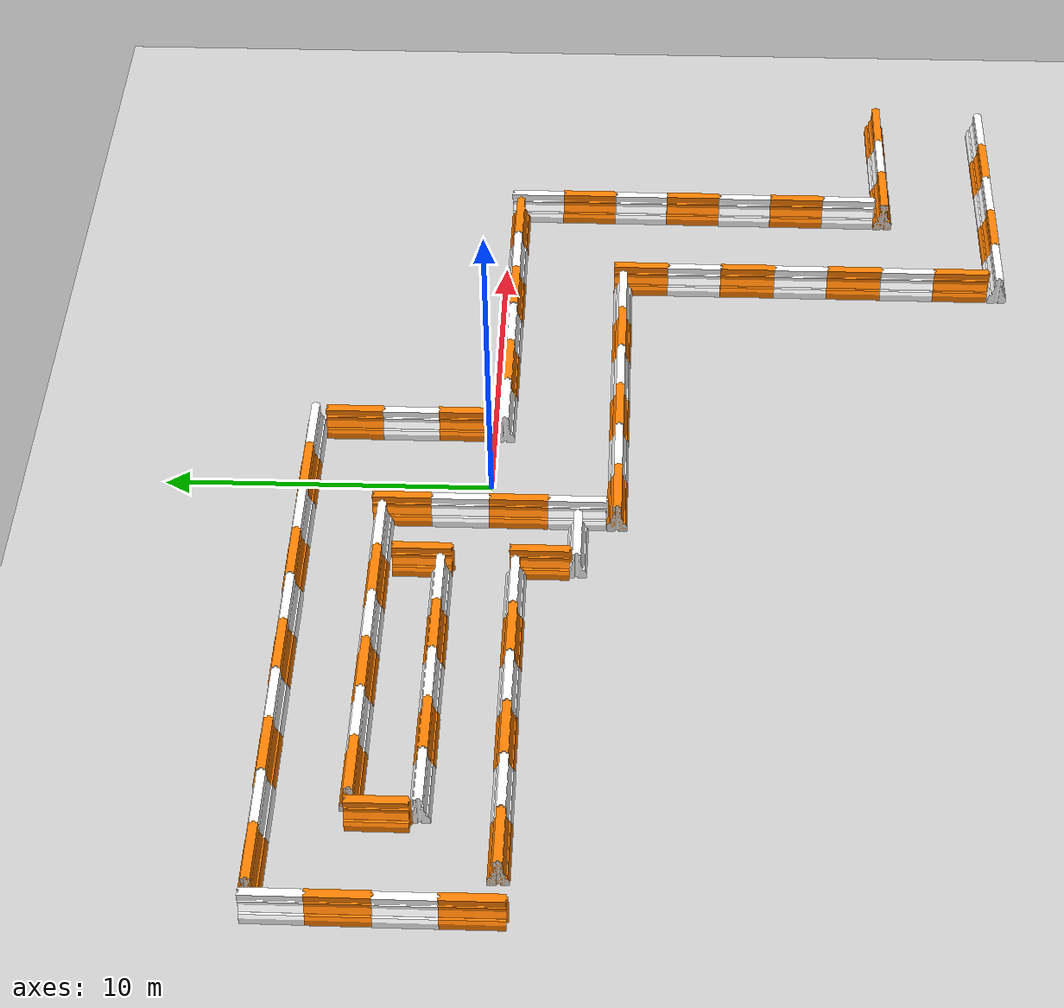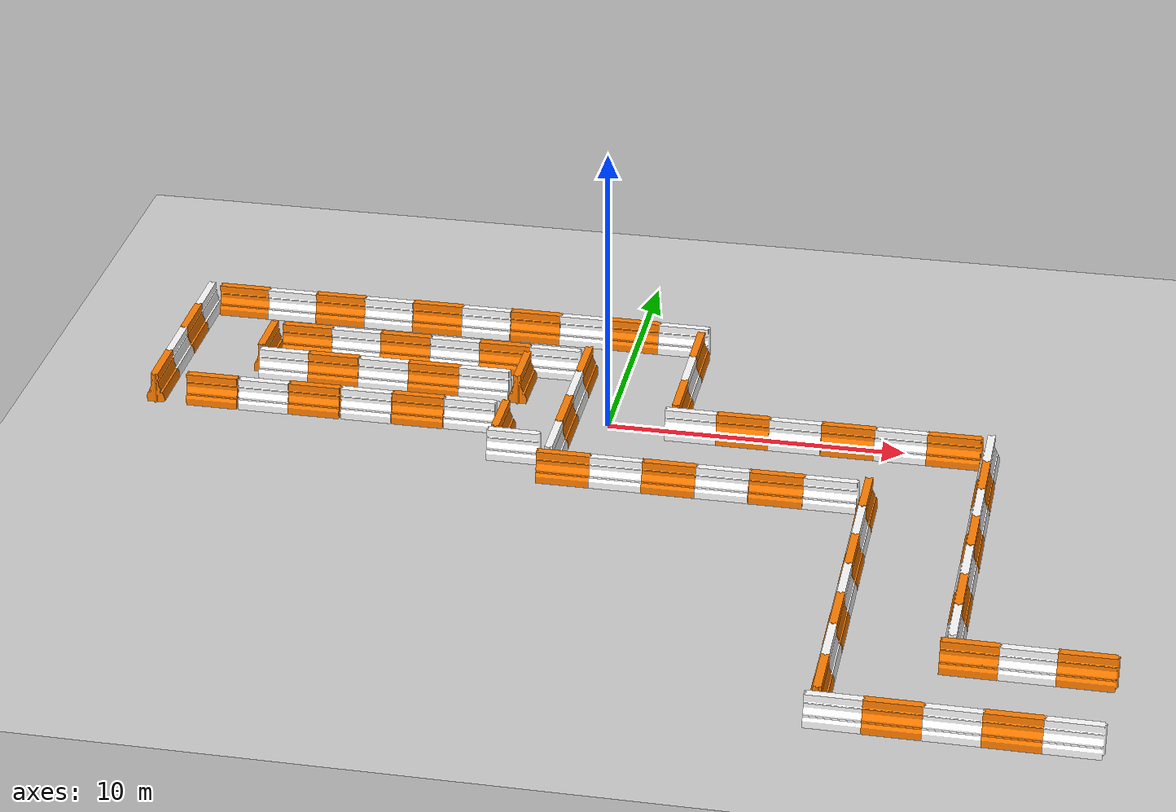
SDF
<sdf version="1.7">
 <world name="default">
  <light name="sun" type="directional">
   <pose>0 0 10 0 -0 0</pose>
   <diffuse>0.8 0.8 0.8 1</diffuse>
   <specular>0.2 0.2 0.2 1</specular>
   <attenuation>
    <range>1000</range>
    <constant>0.9</constant>
    <linear>0.01</linear>
    <quadratic>0.001</quadratic>
   </attenuation>
   <direction>-0.5 0.1 -0.9</direction>
   <spot><inner_angle>0</inner_angle><outer_angle>0</outer_angle><falloff>0</falloff></spot>
  </light>
  <model name="ground_plane">
   <static>1</static>
   <link name="link">
    <collision name="collision">
     <geometry><plane><normal>0 0 1</normal><size>100 100</size></plane></geometry>
     <surface><friction><ode><mu>100</mu><mu2>50</mu2></ode></friction></surface>
    </collision>
    <visual name="visual">
     <cast_shadows>0</cast_shadows>
     <geometry><plane><normal>0 0 1</normal><size>100 100</size></plane></geometry>
     <material>
      <script><uri>file://media/materials/scripts/gazebo.material</uri><name>Gazebo/Grey</name></script>
     </material>
    </visual>
   </link>
  </model>
  <gravity>0 0 -9.8</gravity>
  <magnetic_field>6e-06 2.3e-05 -4.2e-05</magnetic_field>
  <atmosphere type="adiabatic"/>
  <physics type="ode">
   <max_step_size>0.001</max_step_size>
   <real_time_factor>1</real_time_factor>
   <real_time_update_rate>1000</real_time_update_rate>
  </physics>
  <scene><ambient>0.4 0.4 0.4 1</ambient><background>0.7 0.7 0.7 1</background><shadows>0</shadows></scene>
  <audio><device>default</device></audio>
  <spherical_coordinates>
   <surface_model>EARTH_WGS84</surface_model>
   <latitude_deg>0</latitude_deg>
   <longitude_deg>0</longitude_deg>
   <elevation>0</elevation>
   <heading_deg>0</heading_deg>
  </spherical_coordinates>
  <model name="drc_practice_organge_jersey_barrier_0_clone_0">
   <static>1</static>
   <link name="link">
    <visual name="visual">
     <geometry>
      <mesh><uri>model://drc_practice_orange_jersey_barrier/meshes/jersey_barrier.dae</uri></mesh>
     </geometry>
    </visual>
    <collision name="collision">
     <geometry>
      <mesh><uri>model://drc_practice_orange_jersey_barrier/meshes/jersey_barrier.dae</uri></mesh>
     </geometry>
    </collision>
   </link>
   <pose>-3.31318 1.87553 0 0 -0 0</pose>
  </model>
  <model name="drc_practice_white_jersey_barrier_clone_clone_0">
   <static>1</static>
   <link name="link">
    <visual name="visual">
     <geometry>
      <mesh><uri>model://drc_practice_white_jersey_barrier/meshes/jersey_barrier.dae</uri></mesh>
     </geometry>
    </visual>
    <collision name="collision">
     <geometry>
      <mesh><uri>model://drc_practice_white_jersey_barrier/meshes/jersey_barrier.dae</uri></mesh>
     </geometry>
    </collision>
   </link>
   <pose>-2.67869 -2.67276 0 0 -0 1.5707</pose>
  </model>
  <model name="drc_practice_organge_jersey_barrier_0_clone_clone">
   <static>1</static>
   <link name="link">
    <visual name="visual">
     <geometry>
      <mesh><uri>model://drc_practice_orange_jersey_barrier/meshes/jersey_barrier.dae</uri></mesh>
     </geometry>
    </visual>
    <collision name="collision">
     <geometry>
      <mesh><uri>model://drc_practice_orange_jersey_barrier/meshes/jersey_barrier.dae</uri></mesh>
     </geometry>
    </collision>
   </link>
   <pose>2.31138 0.862878 0 0 -0 0</pose>
  </model>
  <model name="drc_practice_white_jersey_barrier_clone_0_clone">
   <static>1</static>
   <link name="link">
    <visual name="visual">
     <geometry>
      <mesh><uri>model://drc_practice_white_jersey_barrier/meshes/jersey_barrier.dae</uri></mesh>
     </geometry>
    </visual>
    <collision name="collision">
     <geometry>
      <mesh><uri>model://drc_practice_white_jersey_barrier/meshes/jersey_barrier.dae</uri></mesh>
     </geometry>
    </collision>
   </link>
   <pose>2.30247 2.60242 0 0 -0 0</pose>
  </model>
  <model name="drc_practice_white_jersey_barrier_clone_clone_clone">
   <static>1</static>
   <link name="link">
    <visual name="visual">
     <geometry>
      <mesh><uri>model://drc_practice_white_jersey_barrier/meshes/jersey_barrier.dae</uri></mesh>
     </geometry>
    </visual>
    <collision name="collision">
     <geometry>
      <mesh><uri>model://drc_practice_white_jersey_barrier/meshes/jersey_barrier.dae</uri></mesh>
     </geometry>
    </collision>
   </link>
   <pose>2.86919 -0.302325 0 0 -0 1.5707</pose>
  </model>
  <model name="drc_practice_organge_jersey_barrier_1_clone_clone_0_clone_clone">
   <static>1</static>
   <link name="link">
    <visual name="visual">
     <geometry>
      <mesh><uri>model://drc_practice_orange_jersey_barrier/meshes/jersey_barrier.dae</uri></mesh>
     </geometry>
    </visual>
    <collision name="collision">
     <geometry>
      <mesh><uri>model://drc_practice_orange_jersey_barrier/meshes/jersey_barrier.dae</uri></mesh>
     </geometry>
    </collision>
   </link>
   <pose>4.62176 -0.320996 0 0 -0 1.5707</pose>
  </model>
  <model name="drc_practice_organge_jersey_barrier_0_clone_0_clone_clone">
   <static>1</static>
   <link name="link">
    <visual name="visual">
     <geometry>
      <mesh><uri>model://drc_practice_orange_jersey_barrier/meshes/jersey_barrier.dae</uri></mesh>
     </geometry>
    </visual>
    <collision name="collision">
     <geometry>
      <mesh><uri>model://drc_practice_orange_jersey_barrier/meshes/jersey_barrier.dae</uri></mesh>
     </geometry>
    </collision>
   </link>
   <pose>-1.31687 -0.878506 0 0 -0 0</pose>
  </model>
  <model name="drc_practice_white_jersey_barrier_clone_1_clone">
   <static>1</static>
   <link name="link">
    <visual name="visual">
     <geometry>
      <mesh><uri>model://drc_practice_white_jersey_barrier/meshes/jersey_barrier.dae</uri></mesh>
     </geometry>
    </visual>
    <collision name="collision">
     <geometry>
      <mesh><uri>model://drc_practice_white_jersey_barrier/meshes/jersey_barrier.dae</uri></mesh>
     </geometry>
    </collision>
   </link>
   <pose>-1.31231 0.867307 0 0 -0 0</pose>
  </model>
  <model name="drc_practice_organge_jersey_barrier_0_clone_0_clone">
   <static>1</static>
   <link name="link">
    <visual name="visual">
     <geometry>
      <mesh><uri>model://drc_practice_orange_jersey_barrier/meshes/jersey_barrier.dae</uri></mesh>
     </geometry>
    </visual>
    <collision name="collision">
     <geometry>
      <mesh><uri>model://drc_practice_orange_jersey_barrier/meshes/jersey_barrier.dae</uri></mesh>
     </geometry>
    </collision>
   </link>
   <pose>-3.33024 -1.58529 0 0 -0 0</pose>
  </model>
  <model name="drc_practice_organge_jersey_barrier_0_clone_0_clone_0">
   <static>1</static>
   <link name="link">
    <visual name="visual">
     <geometry>
      <mesh><uri>model://drc_practice_orange_jersey_barrier/meshes/jersey_barrier.dae</uri></mesh>
     </geometry>
    </visual>
    <collision name="collision">
     <geometry>
      <mesh><uri>model://drc_practice_orange_jersey_barrier/meshes/jersey_barrier.dae</uri></mesh>
     </geometry>
    </collision>
   </link>
   <pose>-1.3008 2.61343 0 0 -0 0</pose>
  </model>
  <model name="drc_practice_white_jersey_barrier_clone_1_clone_clone">
   <static>1</static>
   <link name="link">
    <visual name="visual">
     <geometry>
      <mesh><uri>model://drc_practice_white_jersey_barrier/meshes/jersey_barrier.dae</uri></mesh>
     </geometry>
    </visual>
    <collision name="collision">
     <geometry>
      <mesh><uri>model://drc_practice_white_jersey_barrier/meshes/jersey_barrier.dae</uri></mesh>
     </geometry>
    </collision>
   </link>
   <pose>-1.32394 -2.62974 0 0 -0 0</pose>
  </model>
  <model name="drc_practice_organge_jersey_barrier_1_clone_clone_clone_clone">
   <static>1</static>
   <link name="link">
    <visual name="visual">
     <geometry>
      <mesh><uri>model://drc_practice_orange_jersey_barrier/meshes/jersey_barrier.dae</uri></mesh>
     </geometry>
    </visual>
    <collision name="collision">
     <geometry>
      <mesh><uri>model://drc_practice_orange_jersey_barrier/meshes/jersey_barrier.dae</uri></mesh>
     </geometry>
    </collision>
   </link>
   <pose>-0.767726 -3.83305 0 0 -0 1.5707</pose>
  </model>
  <model name="drc_practice_white_jersey_barrier_clone_clone_1">
   <static>1</static>
   <link name="link">
    <visual name="visual">
     <geometry>
      <mesh><uri>model://drc_practice_white_jersey_barrier/meshes/jersey_barrier.dae</uri></mesh>
     </geometry>
    </visual>
    <collision name="collision">
     <geometry>
      <mesh><uri>model://drc_practice_white_jersey_barrier/meshes/jersey_barrier.dae</uri></mesh>
     </geometry>
    </collision>
   </link>
   <pose>0.983586 -3.83584 0 0 -0 1.5707</pose>
  </model>
  <model name="drc_practice_organge_jersey_barrier_1_clone_clone_clone">
   <static>1</static>
   <link name="link">
    <visual name="visual">
     <geometry>
      <mesh><uri>model://drc_practice_orange_jersey_barrier/meshes/jersey_barrier.dae</uri></mesh>
     </geometry>
    </visual>
    <collision name="collision">
     <geometry>
      <mesh><uri>model://drc_practice_orange_jersey_barrier/meshes/jersey_barrier.dae</uri></mesh>
     </geometry>
    </collision>
   </link>
   <pose>2.73509 -3.84784 0 0 -0 1.5707</pose>
  </model>
  <model name="drc_practice_white_jersey_barrier_clone_clone_1_clone">
   <static>1</static>
   <link name="link">
    <visual name="visual">
     <geometry>
      <mesh><uri>model://drc_practice_white_jersey_barrier/meshes/jersey_barrier.dae</uri></mesh>
     </geometry>
    </visual>
    <collision name="collision">
     <geometry>
      <mesh><uri>model://drc_practice_white_jersey_barrier/meshes/jersey_barrier.dae</uri></mesh>
     </geometry>
    </collision>
   </link>
   <pose>4.48621 -3.852 0 0 -0 1.5707</pose>
  </model>
  <model name="drc_practice_organge_jersey_barrier_0_clone_0_clone_1">
   <static>1</static>
   <link name="link">
    <visual name="visual">
     <geometry>
      <mesh><uri>model://drc_practice_orange_jersey_barrier/meshes/jersey_barrier.dae</uri></mesh>
     </geometry>
    </visual>
    <collision name="collision">
     <geometry>
      <mesh><uri>model://drc_practice_orange_jersey_barrier/meshes/jersey_barrier.dae</uri></mesh>
     </geometry>
    </collision>
   </link>
   <pose>2.31139 4.35051 0 0 -0 0</pose>
  </model>
  <model name="drc_practice_white_jersey_barrier_clone_clone_0_clone">
   <static>1</static>
   <link name="link">
    <visual name="visual">
     <geometry>
      <mesh><uri>model://drc_practice_white_jersey_barrier/meshes/jersey_barrier.dae</uri></mesh>
     </geometry>
    </visual>
    <collision name="collision">
     <geometry>
      <mesh><uri>model://drc_practice_white_jersey_barrier/meshes/jersey_barrier.dae</uri></mesh>
     </geometry>
    </collision>
   </link>
   <pose>1.64216 5.58178 0 0 -0 1.5707</pose>
  </model>
  <model name="drc_practice_organge_jersey_barrier_1_clone_clone_clone_0">
   <static>1</static>
   <link name="link">
    <visual name="visual">
     <geometry>
      <mesh><uri>model://drc_practice_orange_jersey_barrier/meshes/jersey_barrier.dae</uri></mesh>
     </geometry>
    </visual>
    <collision name="collision">
     <geometry>
      <mesh><uri>model://drc_practice_orange_jersey_barrier/meshes/jersey_barrier.dae</uri></mesh>
     </geometry>
    </collision>
   </link>
   <pose>-0.107583 5.59495 0 0 -0 1.5707</pose>
  </model>
  <model name="drc_practice_white_jersey_barrier_clone_clone_0_clone_clone">
   <static>1</static>
   <link name="link">
    <visual name="visual">
     <geometry>
      <mesh><uri>model://drc_practice_white_jersey_barrier/meshes/jersey_barrier.dae</uri></mesh>
     </geometry>
    </visual>
    <collision name="collision">
     <geometry>
      <mesh><uri>model://drc_practice_white_jersey_barrier/meshes/jersey_barrier.dae</uri></mesh>
     </geometry>
    </collision>
   </link>
   <pose>-1.85597 5.61076 0 0 -0 1.5707</pose>
  </model>
  <model name="drc_practice_white_jersey_barrier_clone_clone_0_clone_clone_0">
   <static>1</static>
   <link name="link">
    <visual name="visual">
     <geometry>
      <mesh><uri>model://drc_practice_white_jersey_barrier/meshes/jersey_barrier.dae</uri></mesh>
     </geometry>
    </visual>
    <collision name="collision">
     <geometry>
      <mesh><uri>model://drc_practice_white_jersey_barrier/meshes/jersey_barrier.dae</uri></mesh>
     </geometry>
    </collision>
   </link>
   <pose>-2.44523 3.18144 0 0 -0 1.5707</pose>
  </model>
  <model name="drc_practice_organge_jersey_barrier_1_clone_clone_clone_0_clone">
   <static>1</static>
   <link name="link">
    <visual name="visual">
     <geometry>
      <mesh><uri>model://drc_practice_orange_jersey_barrier/meshes/jersey_barrier.dae</uri></mesh>
     </geometry>
    </visual>
    <collision name="collision">
     <geometry>
      <mesh><uri>model://drc_practice_orange_jersey_barrier/meshes/jersey_barrier.dae</uri></mesh>
     </geometry>
    </collision>
   </link>
   <pose>-4.196 3.18198 0 0 -0 1.5707</pose>
  </model>
  <model name="drc_practice_organge_jersey_barrier_1_clone_clone_clone_0_clone_0">
   <static>1</static>
   <link name="link">
    <visual name="visual">
     <geometry>
      <mesh><uri>model://drc_practice_orange_jersey_barrier/meshes/jersey_barrier.dae</uri></mesh>
     </geometry>
    </visual>
    <collision name="collision">
     <geometry>
      <mesh><uri>model://drc_practice_orange_jersey_barrier/meshes/jersey_barrier.dae</uri></mesh>
     </geometry>
    </collision>
   </link>
   <pose>-3.60749 5.61576 0 0 -0 1.5707</pose>
  </model>
  <model name="drc_practice_white_jersey_barrier_clone_clone_0_clone_clone_0_clone">
   <static>1</static>
   <link name="link">
    <visual name="visual">
     <geometry>
      <mesh><uri>model://drc_practice_white_jersey_barrier/meshes/jersey_barrier.dae</uri></mesh>
     </geometry>
    </visual>
    <collision name="collision">
     <geometry>
      <mesh><uri>model://drc_practice_white_jersey_barrier/meshes/jersey_barrier.dae</uri></mesh>
     </geometry>
    </collision>
   </link>
   <pose>6.37823 -0.335627 0 0 -0 1.5707</pose>
  </model>
  <model name="drc_practice_white_jersey_barrier_clone_clone_0_clone_clone_0_clone_0">
   <static>1</static>
   <link name="link">
    <visual name="visual">
     <geometry>
      <mesh><uri>model://drc_practice_white_jersey_barrier/meshes/jersey_barrier.dae</uri></mesh>
     </geometry>
    </visual>
    <collision name="collision">
     <geometry>
      <mesh><uri>model://drc_practice_white_jersey_barrier/meshes/jersey_barrier.dae</uri></mesh>
     </geometry>
    </collision>
   </link>
   <pose>-5.36513 5.60492 0 0 -0 1.5707</pose>
  </model>
  <model name="drc_practice_white_jersey_barrier_clone_clone_0_clone_clone_0_clone_1">
   <static>1</static>
   <link name="link">
    <visual name="visual">
     <geometry>
      <mesh><uri>model://drc_practice_white_jersey_barrier/meshes/jersey_barrier.dae</uri></mesh>
     </geometry>
    </visual>
    <collision name="collision">
     <geometry>
      <mesh><uri>model://drc_practice_white_jersey_barrier/meshes/jersey_barrier.dae</uri></mesh>
     </geometry>
    </collision>
   </link>
   <pose>-5.94465 3.19273 0 0 -0 1.5707</pose>
  </model>
  <model name="drc_practice_organge_jersey_barrier_1_clone_clone_clone_clone_clone">
   <static>1</static>
   <link name="link">
    <visual name="visual">
     <geometry>
      <mesh><uri>model://drc_practice_orange_jersey_barrier/meshes/jersey_barrier.dae</uri></mesh>
     </geometry>
    </visual>
    <collision name="collision">
     <geometry>
      <mesh><uri>model://drc_practice_orange_jersey_barrier/meshes/jersey_barrier.dae</uri></mesh>
     </geometry>
    </collision>
   </link>
   <pose>6.25905 -3.86914 0 0 -0 1.5707</pose>
  </model>
  <model name="drc_practice_organge_jersey_barrier_1_clone_clone_clone_clone_clone_0">
   <static>1</static>
   <link name="link">
    <visual name="visual">
     <geometry>
      <mesh><uri>model://drc_practice_orange_jersey_barrier/meshes/jersey_barrier.dae</uri></mesh>
     </geometry>
    </visual>
    <collision name="collision">
     <geometry>
      <mesh><uri>model://drc_practice_orange_jersey_barrier/meshes/jersey_barrier.dae</uri></mesh>
     </geometry>
    </collision>
   </link>
   <pose>8.14006 -0.351847 0 0 -0 1.5707</pose>
  </model>
  <model name="drc_practice_organge_jersey_barrier_1_clone_clone_clone_clone_clone_1">
   <static>1</static>
   <link name="link">
    <visual name="visual">
     <geometry>
      <mesh><uri>model://drc_practice_orange_jersey_barrier/meshes/jersey_barrier.dae</uri></mesh>
     </geometry>
    </visual>
    <collision name="collision">
     <geometry>
      <mesh><uri>model://drc_practice_orange_jersey_barrier/meshes/jersey_barrier.dae</uri></mesh>
     </geometry>
    </collision>
   </link>
   <pose>-7.12081 5.61938 0 0 -0 1.5707</pose>
  </model>
  <model name="drc_practice_organge_jersey_barrier_1_clone_clone_clone_clone_clone_2">
   <static>1</static>
   <link name="link">
    <visual name="visual">
     <geometry>
      <mesh><uri>model://drc_practice_orange_jersey_barrier/meshes/jersey_barrier.dae</uri></mesh>
     </geometry>
    </visual>
    <collision name="collision">
     <geometry>
      <mesh><uri>model://drc_practice_orange_jersey_barrier/meshes/jersey_barrier.dae</uri></mesh>
     </geometry>
    </collision>
   </link>
   <pose>-7.6982 3.19881 0 0 -0 1.5707</pose>
  </model>
  <model name="drc_practice_white_jersey_barrier_clone_clone_1_clone_clone">
   <static>1</static>
   <link name="link">
    <visual name="visual">
     <geometry>
      <mesh><uri>model://drc_practice_white_jersey_barrier/meshes/jersey_barrier.dae</uri></mesh>
     </geometry>
    </visual>
    <collision name="collision">
     <geometry>
      <mesh><uri>model://drc_practice_white_jersey_barrier/meshes/jersey_barrier.dae</uri></mesh>
     </geometry>
    </collision>
   </link>
   <pose>-8.88335 5.62037 0 0 -0 1.5707</pose>
  </model>
  <model name="drc_practice_white_jersey_barrier_clone_clone_1_clone_clone_0">
   <static>1</static>
   <link name="link">
    <visual name="visual">
     <geometry>
      <mesh><uri>model://drc_practice_white_jersey_barrier/meshes/jersey_barrier.dae</uri></mesh>
     </geometry>
    </visual>
    <collision name="collision">
     <geometry>
      <mesh><uri>model://drc_practice_white_jersey_barrier/meshes/jersey_barrier.dae</uri></mesh>
     </geometry>
    </collision>
   </link>
   <pose>-9.44659 3.20838 0 0 -0 1.5707</pose>
  </model>
  <model name="drc_practice_white_jersey_barrier_clone_clone_1_clone_clone_1">
   <static>1</static>
   <link name="link">
    <visual name="visual">
     <geometry>
      <mesh><uri>model://drc_practice_white_jersey_barrier/meshes/jersey_barrier.dae</uri></mesh>
     </geometry>
    </visual>
    <collision name="collision">
     <geometry>
      <mesh><uri>model://drc_practice_white_jersey_barrier/meshes/jersey_barrier.dae</uri></mesh>
     </geometry>
    </collision>
   </link>
   <pose>9.89396 -0.347285 0 0 -0 1.5707</pose>
  </model>
  <model name="drc_practice_white_jersey_barrier_clone_clone_1_clone_clone_2">
   <static>1</static>
   <link name="link">
    <visual name="visual">
     <geometry>
      <mesh><uri>model://drc_practice_white_jersey_barrier/meshes/jersey_barrier.dae</uri></mesh>
     </geometry>
    </visual>
    <collision name="collision">
     <geometry>
      <mesh><uri>model://drc_practice_white_jersey_barrier/meshes/jersey_barrier.dae</uri></mesh>
     </geometry>
    </collision>
   </link>
   <pose>8.0118 -3.87335 0 0 -0 1.5707</pose>
  </model>
  <model name="drc_practice_organge_jersey_barrier_1_clone_clone_clone_clone_clone_2_clone">
   <static>1</static>
   <link name="link">
    <visual name="visual">
     <geometry>
      <mesh><uri>model://drc_practice_orange_jersey_barrier/meshes/jersey_barrier.dae</uri></mesh>
     </geometry>
    </visual>
    <collision name="collision">
     <geometry>
      <mesh><uri>model://drc_practice_orange_jersey_barrier/meshes/jersey_barrier.dae</uri></mesh>
     </geometry>
    </collision>
   </link>
   <pose>11.6456 -0.366732 0 0 -0 1.5707</pose>
  </model>
  <model name="drc_practice_organge_jersey_barrier_1_clone_clone_clone_clone_clone_2_clone_0">
   <static>1</static>
   <link name="link">
    <visual name="visual">
     <geometry>
      <mesh><uri>model://drc_practice_orange_jersey_barrier/meshes/jersey_barrier.dae</uri></mesh>
     </geometry>
    </visual>
    <collision name="collision">
     <geometry>
      <mesh><uri>model://drc_practice_orange_jersey_barrier/meshes/jersey_barrier.dae</uri></mesh>
     </geometry>
    </collision>
   </link>
   <pose>-10.6287 5.62409 0 0 -0 1.5707</pose>
  </model>
  <model name="drc_practice_organge_jersey_barrier_1_clone_clone_clone_clone_clone_2_clone_1">
   <static>1</static>
   <link name="link">
    <visual name="visual">
     <geometry>
      <mesh><uri>model://drc_practice_orange_jersey_barrier/meshes/jersey_barrier.dae</uri></mesh>
     </geometry>
    </visual>
    <collision name="collision">
     <geometry>
      <mesh><uri>model://drc_practice_orange_jersey_barrier/meshes/jersey_barrier.dae</uri></mesh>
     </geometry>
    </collision>
   </link>
   <pose>-11.1978 3.21588 0 0 -0 1.5707</pose>
  </model>
  <model name="drc_practice_organge_jersey_barrier_0_clone_0_clone_clone_0">
   <static>1</static>
   <link name="link">
    <visual name="visual">
     <geometry>
      <mesh><uri>model://drc_practice_orange_jersey_barrier/meshes/jersey_barrier.dae</uri></mesh>
     </geometry>
    </visual>
    <collision name="collision">
     <geometry>
      <mesh><uri>model://drc_practice_orange_jersey_barrier/meshes/jersey_barrier.dae</uri></mesh>
     </geometry>
    </collision>
   </link>
   <pose>9.21025 -4.45761 0 0 -0 0</pose>
  </model>
  <model name="drc_practice_white_jersey_barrier_clone_1_clone_clone_0">
   <static>1</static>
   <link name="link">
    <visual name="visual">
     <geometry>
      <mesh><uri>model://drc_practice_white_jersey_barrier/meshes/jersey_barrier.dae</uri></mesh>
     </geometry>
    </visual>
    <collision name="collision">
     <geometry>
      <mesh><uri>model://drc_practice_white_jersey_barrier/meshes/jersey_barrier.dae</uri></mesh>
     </geometry>
    </collision>
   </link>
   <pose>12.8282 -0.940182 0 0 -0 0</pose>
  </model>
  <model name="drc_practice_organge_jersey_barrier_0_clone_0_clone_clone_0_clone">
   <static>1</static>
   <link name="link">
    <visual name="visual">
     <geometry>
      <mesh><uri>model://drc_practice_orange_jersey_barrier/meshes/jersey_barrier.dae</uri></mesh>
     </geometry>
    </visual>
    <collision name="collision">
     <geometry>
      <mesh><uri>model://drc_practice_orange_jersey_barrier/meshes/jersey_barrier.dae</uri></mesh>
     </geometry>
    </collision>
   </link>
   <pose>12.8231 -2.69009 0 0 -0 0</pose>
  </model>
  <model name="drc_practice_white_jersey_barrier_clone_1_clone_clone_0_clone">
   <static>1</static>
   <link name="link">
    <visual name="visual">
     <geometry>
      <mesh><uri>model://drc_practice_white_jersey_barrier/meshes/jersey_barrier.dae</uri></mesh>
     </geometry>
    </visual>
    <collision name="collision">
     <geometry>
      <mesh><uri>model://drc_practice_white_jersey_barrier/meshes/jersey_barrier.dae</uri></mesh>
     </geometry>
    </collision>
   </link>
   <pose>12.8162 -4.43449 0 0 -0 0</pose>
  </model>
  <model name="drc_practice_white_jersey_barrier_clone_1_clone_clone_0_clone_0">
   <static>1</static>
   <link name="link">
    <visual name="visual">
     <geometry>
      <mesh><uri>model://drc_practice_white_jersey_barrier/meshes/jersey_barrier.dae</uri></mesh>
     </geometry>
    </visual>
    <collision name="collision">
     <geometry>
      <mesh><uri>model://drc_practice_white_jersey_barrier/meshes/jersey_barrier.dae</uri></mesh>
     </geometry>
    </collision>
   </link>
   <pose>9.20036 -6.20548 0 0 -0 0</pose>
  </model>
  <model name="drc_practice_organge_jersey_barrier_0_clone_0_clone_clone_0_clone_clone">
   <static>1</static>
   <link name="link">
    <visual name="visual">
     <geometry>
      <mesh><uri>model://drc_practice_orange_jersey_barrier/meshes/jersey_barrier.dae</uri></mesh>
     </geometry>
    </visual>
    <collision name="collision">
     <geometry>
      <mesh><uri>model://drc_practice_orange_jersey_barrier/meshes/jersey_barrier.dae</uri></mesh>
     </geometry>
    </collision>
   </link>
   <pose>12.8107 -6.19119 0 0 -0 0</pose>
  </model>
  <model name="drc_practice_organge_jersey_barrier_0_clone_0_clone_clone_0_clone_clone_0">
   <static>1</static>
   <link name="link">
    <visual name="visual">
     <geometry>
      <mesh><uri>model://drc_practice_orange_jersey_barrier/meshes/jersey_barrier.dae</uri></mesh>
     </geometry>
    </visual>
    <collision name="collision">
     <geometry>
      <mesh><uri>model://drc_practice_orange_jersey_barrier/meshes/jersey_barrier.dae</uri></mesh>
     </geometry>
    </collision>
   </link>
   <pose>9.20233 -7.96311 0 0 -0 0</pose>
  </model>
  <model name="drc_practice_white_jersey_barrier_clone_1_clone_clone_0_clone_0_clone">
   <static>1</static>
   <link name="link">
    <visual name="visual">
     <geometry>
      <mesh><uri>model://drc_practice_white_jersey_barrier/meshes/jersey_barrier.dae</uri></mesh>
     </geometry>
    </visual>
    <collision name="collision">
     <geometry>
      <mesh><uri>model://drc_practice_white_jersey_barrier/meshes/jersey_barrier.dae</uri></mesh>
     </geometry>
    </collision>
   </link>
   <pose>12.7899 -7.94121 0 0 -0 0</pose>
  </model>
  <model name="drc_practice_white_jersey_barrier_clone_1_clone_clone_0_clone_0_clone_0">
   <static>1</static>
   <link name="link">
    <visual name="visual">
     <geometry>
      <mesh><uri>model://drc_practice_white_jersey_barrier/meshes/jersey_barrier.dae</uri></mesh>
     </geometry>
    </visual>
    <collision name="collision">
     <geometry>
      <mesh><uri>model://drc_practice_white_jersey_barrier/meshes/jersey_barrier.dae</uri></mesh>
     </geometry>
    </collision>
   </link>
   <pose>9.18991 -9.70726 0 0 -0 0</pose>
  </model>
  <model name="drc_practice_organge_jersey_barrier_0_clone_0_clone_clone_0_clone_clone_0_clone">
   <static>1</static>
   <link name="link">
    <visual name="visual">
     <geometry>
      <mesh><uri>model://drc_practice_orange_jersey_barrier/meshes/jersey_barrier.dae</uri></mesh>
     </geometry>
    </visual>
    <collision name="collision">
     <geometry>
      <mesh><uri>model://drc_practice_orange_jersey_barrier/meshes/jersey_barrier.dae</uri></mesh>
     </geometry>
    </collision>
   </link>
   <pose>12.7835 -9.69659 0 0 -0 0</pose>
  </model>
  <model name="drc_practice_white_jersey_barrier_clone_1_clone_clone_0_clone_0_clone_clone">
   <static>1</static>
   <link name="link">
    <visual name="visual">
     <geometry>
      <mesh><uri>model://drc_practice_white_jersey_barrier/meshes/jersey_barrier.dae</uri></mesh>
     </geometry>
    </visual>
    <collision name="collision">
     <geometry>
      <mesh><uri>model://drc_practice_white_jersey_barrier/meshes/jersey_barrier.dae</uri></mesh>
     </geometry>
    </collision>
   </link>
   <pose>12.7747 -11.441 0 0 -0 0</pose>
  </model>
  <model name="drc_practice_organge_jersey_barrier_0_clone_0_clone_clone_0_clone_clone_0_clone_clone">
   <static>1</static>
   <link name="link">
    <visual name="visual">
     <geometry>
      <mesh><uri>model://drc_practice_orange_jersey_barrier/meshes/jersey_barrier.dae</uri></mesh>
     </geometry>
    </visual>
    <collision name="collision">
     <geometry>
      <mesh><uri>model://drc_practice_orange_jersey_barrier/meshes/jersey_barrier.dae</uri></mesh>
     </geometry>
    </collision>
   </link>
   <pose>9.182 -11.4555 0 0 -0 0</pose>
  </model>
  <model name="drc_practice_white_jersey_barrier_clone_1_clone_clone_0_clone_0_clone_clone_clone">
   <static>1</static>
   <link name="link">
    <visual name="visual">
     <geometry>
      <mesh><uri>model://drc_practice_white_jersey_barrier/meshes/jersey_barrier.dae</uri></mesh>
     </geometry>
    </visual>
    <collision name="collision">
     <geometry>
      <mesh><uri>model://drc_practice_white_jersey_barrier/meshes/jersey_barrier.dae</uri></mesh>
     </geometry>
    </collision>
   </link>
   <pose>9.17034 -13.2035 0 0 -0 0</pose>
  </model>
  <model name="drc_practice_organge_jersey_barrier_0_clone_0_clone_clone_0_clone_clone_0_clone_clone_clone">
   <static>1</static>
   <link name="link">
    <visual name="visual">
     <geometry>
      <mesh><uri>model://drc_practice_orange_jersey_barrier/meshes/jersey_barrier.dae</uri></mesh>
     </geometry>
    </visual>
    <collision name="collision">
     <geometry>
      <mesh><uri>model://drc_practice_orange_jersey_barrier/meshes/jersey_barrier.dae</uri></mesh>
     </geometry>
    </collision>
   </link>
   <pose>9.16282 -14.9534 0 0 -0 0</pose>
  </model>
  <model name="drc_practice_white_jersey_barrier_clone_clone_1_clone_clone_2_clone">
   <static>1</static>
   <link name="link">
    <visual name="visual">
     <geometry>
      <mesh><uri>model://drc_practice_white_jersey_barrier/meshes/jersey_barrier.dae</uri></mesh>
     </geometry>
    </visual>
    <collision name="collision">
     <geometry>
      <mesh><uri>model://drc_practice_white_jersey_barrier/meshes/jersey_barrier.dae</uri></mesh>
     </geometry>
    </collision>
   </link>
   <pose>9.69283 -16.1801 0 0 -0 1.5707</pose>
  </model>
  <model name="drc_practice_organge_jersey_barrier_1_clone_clone_clone_clone_clone_3">
   <static>1</static>
   <link name="link">
    <visual name="visual">
     <geometry>
      <mesh><uri>model://drc_practice_orange_jersey_barrier/meshes/jersey_barrier.dae</uri></mesh>
     </geometry>
    </visual>
    <collision name="collision">
     <geometry>
      <mesh><uri>model://drc_practice_orange_jersey_barrier/meshes/jersey_barrier.dae</uri></mesh>
     </geometry>
    </collision>
   </link>
   <pose>13.3301 -12.6494 0 0 -0 1.5707</pose>
  </model>
  <model name="drc_practice_organge_jersey_barrier_1_clone_clone_clone_clone_clone_4">
   <static>1</static>
   <link name="link">
    <visual name="visual">
     <geometry>
      <mesh><uri>model://drc_practice_orange_jersey_barrier/meshes/jersey_barrier.dae</uri></mesh>
     </geometry>
    </visual>
    <collision name="collision">
     <geometry>
      <mesh><uri>model://drc_practice_orange_jersey_barrier/meshes/jersey_barrier.dae</uri></mesh>
     </geometry>
    </collision>
   </link>
   <pose>11.4375 -16.1984 0 0 -0 1.5707</pose>
  </model>
  <model name="drc_practice_white_jersey_barrier_clone_clone_1_clone_clone_2_clone_clone">
   <static>1</static>
   <link name="link">
    <visual name="visual">
     <geometry>
      <mesh><uri>model://drc_practice_white_jersey_barrier/meshes/jersey_barrier.dae</uri></mesh>
     </geometry>
    </visual>
    <collision name="collision">
     <geometry>
      <mesh><uri>model://drc_practice_white_jersey_barrier/meshes/jersey_barrier.dae</uri></mesh>
     </geometry>
    </collision>
   </link>
   <pose>13.1829 -16.2058 0 0 -0 1.5707</pose>
  </model>
  <model name="drc_practice_white_jersey_barrier_clone_clone_1_clone_clone_2_clone_clone_0">
   <static>1</static>
   <link name="link">
    <visual name="visual">
     <geometry>
      <mesh><uri>model://drc_practice_white_jersey_barrier/meshes/jersey_barrier.dae</uri></mesh>
     </geometry>
    </visual>
    <collision name="collision">
     <geometry>
      <mesh><uri>model://drc_practice_white_jersey_barrier/meshes/jersey_barrier.dae</uri></mesh>
     </geometry>
    </collision>
   </link>
   <pose>15.0782 -12.6476 0 0 -0 1.5707</pose>
  </model>
  <model name="drc_practice_organge_jersey_barrier_1_clone_clone_clone_clone_clone_4_clone">
   <static>1</static>
   <link name="link">
    <visual name="visual">
     <geometry>
      <mesh><uri>model://drc_practice_orange_jersey_barrier/meshes/jersey_barrier.dae</uri></mesh>
     </geometry>
    </visual>
    <collision name="collision">
     <geometry>
      <mesh><uri>model://drc_practice_orange_jersey_barrier/meshes/jersey_barrier.dae</uri></mesh>
     </geometry>
    </collision>
   </link>
   <pose>16.8292 -12.6507 0 0 -0 1.5707</pose>
  </model>
  <model name="drc_practice_organge_jersey_barrier_1_clone_clone_clone_clone_clone_4_clone_0">
   <static>1</static>
   <link name="link">
    <visual name="visual">
     <geometry>
      <mesh><uri>model://drc_practice_orange_jersey_barrier/meshes/jersey_barrier.dae</uri></mesh>
     </geometry>
    </visual>
    <collision name="collision">
     <geometry>
      <mesh><uri>model://drc_practice_orange_jersey_barrier/meshes/jersey_barrier.dae</uri></mesh>
     </geometry>
    </collision>
   </link>
   <pose>14.9322 -16.216 0 0 -0 1.5707</pose>
  </model>
  <model name="drc_practice_white_jersey_barrier_clone_clone_1_clone_clone_2_clone_clone_0_clone">
   <static>1</static>
   <link name="link">
    <visual name="visual">
     <geometry>
      <mesh><uri>model://drc_practice_white_jersey_barrier/meshes/jersey_barrier.dae</uri></mesh>
     </geometry>
    </visual>
    <collision name="collision">
     <geometry>
      <mesh><uri>model://drc_practice_white_jersey_barrier/meshes/jersey_barrier.dae</uri></mesh>
     </geometry>
    </collision>
   </link>
   <pose>16.6822 -16.2179 0 0 -0 1.5707</pose>
  </model>
  <model name="drc_practice_white_jersey_barrier_clone_clone_0_clone_1">
   <static>1</static>
   <link name="link">
    <visual name="visual">
     <geometry>
      <mesh><uri>model://drc_practice_white_jersey_barrier/meshes/jersey_barrier.dae</uri></mesh>
     </geometry>
    </visual>
    <collision name="collision">
     <geometry>
      <mesh><uri>model://drc_practice_white_jersey_barrier/meshes/jersey_barrier.dae</uri></mesh>
     </geometry>
    </collision>
   </link>
   <pose>-4.51546 1.29716 0 0 -0 1.5707</pose>
  </model>
  <model name="drc_practice_organge_jersey_barrier_1_clone_clone_clone_clone_clone_2_clone_1_clone">
   <static>1</static>
   <link name="link">
    <visual name="visual">
     <geometry>
      <mesh><uri>model://drc_practice_orange_jersey_barrier/meshes/jersey_barrier.dae</uri></mesh>
     </geometry>
    </visual>
    <collision name="collision">
     <geometry>
      <mesh><uri>model://drc_practice_orange_jersey_barrier/meshes/jersey_barrier.dae</uri></mesh>
     </geometry>
    </collision>
   </link>
   <pose>-6.25603 1.29658 0 0 -0 1.5707</pose>
  </model>
  <model name="drc_practice_white_jersey_barrier_clone_clone_0_clone_0_clone_0">
   <static>1</static>
   <link name="link">
    <visual name="visual">
     <geometry>
      <mesh><uri>model://drc_practice_white_jersey_barrier/meshes/jersey_barrier.dae</uri></mesh>
     </geometry>
    </visual>
    <collision name="collision">
     <geometry>
      <mesh><uri>model://drc_practice_white_jersey_barrier/meshes/jersey_barrier.dae</uri></mesh>
     </geometry>
    </collision>
   </link>
   <pose>-8.02107 1.30844 0 0 -0 1.5707</pose>
  </model>
  <model name="drc_practice_organge_jersey_barrier_1_clone_clone_clone_clone_clone_2_clone_1_clone_clone">
   <static>1</static>
   <link name="link">
    <visual name="visual">
     <geometry>
      <mesh><uri>model://drc_practice_orange_jersey_barrier/meshes/jersey_barrier.dae</uri></mesh>
     </geometry>
    </visual>
    <collision name="collision">
     <geometry>
      <mesh><uri>model://drc_practice_orange_jersey_barrier/meshes/jersey_barrier.dae</uri></mesh>
     </geometry>
    </collision>
   </link>
   <pose>-9.78591 1.30801 0 0 -0 1.5707</pose>
  </model>
  <model name="drc_practice_white_jersey_barrier_clone_clone_0_clone_0_clone_clone">
   <static>1</static>
   <link name="link">
    <visual name="visual">
     <geometry>
      <mesh><uri>model://drc_practice_white_jersey_barrier/meshes/jersey_barrier.dae</uri></mesh>
     </geometry>
    </visual>
    <collision name="collision">
     <geometry>
      <mesh><uri>model://drc_practice_white_jersey_barrier/meshes/jersey_barrier.dae</uri></mesh>
     </geometry>
    </collision>
   </link>
   <pose>-11.5387 1.31984 0 0 -0 1.5707</pose>
  </model>
  <model name="drc_practice_organge_jersey_barrier_0_clone_0_clone_2_clone_0">
   <static>1</static>
   <link name="link">
    <visual name="visual">
     <geometry>
      <mesh><uri>model://drc_practice_orange_jersey_barrier/meshes/jersey_barrier.dae</uri></mesh>
     </geometry>
    </visual>
    <collision name="collision">
     <geometry>
      <mesh><uri>model://drc_practice_orange_jersey_barrier/meshes/jersey_barrier.dae</uri></mesh>
     </geometry>
    </collision>
   </link>
   <pose>-12.4113 2.45321 0 0 -0 0</pose>
  </model>
  <model name="drc_practice_white_jersey_barrier_clone_clone_0_clone_0_clone_clone_clone_clone">
   <static>1</static>
   <link name="link">
    <visual name="visual">
     <geometry>
      <mesh><uri>model://drc_practice_white_jersey_barrier/meshes/jersey_barrier.dae</uri></mesh>
     </geometry>
    </visual>
    <collision name="collision">
     <geometry>
      <mesh><uri>model://drc_practice_white_jersey_barrier/meshes/jersey_barrier.dae</uri></mesh>
     </geometry>
    </collision>
   </link>
   <pose>-12.3862 5.6151 0 0 -0 1.5707</pose>
  </model>
  <model name="drc_practice_organge_jersey_barrier_1_clone_clone_clone_clone_clone_2_clone_1_clone_1">
   <static>1</static>
   <link name="link">
    <visual name="visual">
     <geometry>
      <mesh><uri>model://drc_practice_orange_jersey_barrier/meshes/jersey_barrier.dae</uri></mesh>
     </geometry>
    </visual>
    <collision name="collision">
     <geometry>
      <mesh><uri>model://drc_practice_orange_jersey_barrier/meshes/jersey_barrier.dae</uri></mesh>
     </geometry>
    </collision>
   </link>
   <pose>-14.1298 5.62479 0 0 -0 1.5707</pose>
  </model>
  <model name="drc_practice_white_jersey_barrier_clone_1_clone_clone_1_clone_clone">
   <static>1</static>
   <link name="link">
    <visual name="visual">
     <geometry>
      <mesh><uri>model://drc_practice_white_jersey_barrier/meshes/jersey_barrier.dae</uri></mesh>
     </geometry>
    </visual>
    <collision name="collision">
     <geometry>
      <mesh><uri>model://drc_practice_white_jersey_barrier/meshes/jersey_barrier.dae</uri></mesh>
     </geometry>
    </collision>
   </link>
   <pose>-15.3832 4.93251 0 0 -0 0</pose>
  </model>
  <model name="drc_practice_organge_jersey_barrier_0_clone_0_clone_2_clone_clone">
   <static>1</static>
   <link name="link">
    <visual name="visual">
     <geometry>
      <mesh><uri>model://drc_practice_orange_jersey_barrier/meshes/jersey_barrier.dae</uri></mesh>
     </geometry>
    </visual>
    <collision name="collision">
     <geometry>
      <mesh><uri>model://drc_practice_orange_jersey_barrier/meshes/jersey_barrier.dae</uri></mesh>
     </geometry>
    </collision>
   </link>
   <pose>-15.3978 3.19696 0 0 -0 0</pose>
  </model>
  <model name="drc_practice_white_jersey_barrier_clone_1_clone_clone_1_clone_0">
   <static>1</static>
   <link name="link">
    <visual name="visual">
     <geometry>
      <mesh><uri>model://drc_practice_white_jersey_barrier/meshes/jersey_barrier.dae</uri></mesh>
     </geometry>
    </visual>
    <collision name="collision">
     <geometry>
      <mesh><uri>model://drc_practice_white_jersey_barrier/meshes/jersey_barrier.dae</uri></mesh>
     </geometry>
    </collision>
   </link>
   <pose>-15.412 1.45409 0 0 -0 0</pose>
  </model>
  <model name="drc_practice_organge_jersey_barrier_0_clone_0_clone_2_clone_1">
   <static>1</static>
   <link name="link">
    <visual name="visual">
     <geometry>
      <mesh><uri>model://drc_practice_orange_jersey_barrier/meshes/jersey_barrier.dae</uri></mesh>
     </geometry>
    </visual>
    <collision name="collision">
     <geometry>
      <mesh><uri>model://drc_practice_orange_jersey_barrier/meshes/jersey_barrier.dae</uri></mesh>
     </geometry>
    </collision>
   </link>
   <pose>-15.4145 -0.284403 0 0 -0 0</pose>
  </model>
  <model name="drc_practice_organge_jersey_barrier_1_clone_clone_clone_clone_clone_2_clone_1_clone_clone_0_clone_clone">
   <static>1</static>
   <link name="link">
    <visual name="visual">
     <geometry>
      <mesh><uri>model://drc_practice_orange_jersey_barrier/meshes/jersey_barrier.dae</uri></mesh>
     </geometry>
    </visual>
    <collision name="collision">
     <geometry>
      <mesh><uri>model://drc_practice_orange_jersey_barrier/meshes/jersey_barrier.dae</uri></mesh>
     </geometry>
    </collision>
   </link>
   <pose>-13.4509 -0.900502 0 0 -0 1.5707</pose>
  </model>
  <model name="drc_practice_white_jersey_barrier_clone_clone_0_clone_0_clone_clone_0_clone">
   <static>1</static>
   <link name="link">
    <visual name="visual">
     <geometry>
      <mesh><uri>model://drc_practice_white_jersey_barrier/meshes/jersey_barrier.dae</uri></mesh>
     </geometry>
    </visual>
    <collision name="collision">
     <geometry>
      <mesh><uri>model://drc_practice_white_jersey_barrier/meshes/jersey_barrier.dae</uri></mesh>
     </geometry>
    </collision>
   </link>
   <pose>-11.6541 -0.89888 0 0 -0 1.5707</pose>
  </model>
  <model name="drc_practice_organge_jersey_barrier_1_clone_clone_clone_clone_clone_2_clone_1_clone_clone_0_clone">
   <static>1</static>
   <link name="link">
    <visual name="visual">
     <geometry>
      <mesh><uri>model://drc_practice_orange_jersey_barrier/meshes/jersey_barrier.dae</uri></mesh>
     </geometry>
    </visual>
    <collision name="collision">
     <geometry>
      <mesh><uri>model://drc_practice_orange_jersey_barrier/meshes/jersey_barrier.dae</uri></mesh>
     </geometry>
    </collision>
   </link>
   <pose>-9.88936 -0.888955 0 0 -0 1.5707</pose>
  </model>
  <model name="drc_practice_white_jersey_barrier_clone_clone_0_clone_0_clone_clone_0">
   <static>1</static>
   <link name="link">
    <visual name="visual">
     <geometry>
      <mesh><uri>model://drc_practice_white_jersey_barrier/meshes/jersey_barrier.dae</uri></mesh>
     </geometry>
    </visual>
    <collision name="collision">
     <geometry>
      <mesh><uri>model://drc_practice_white_jersey_barrier/meshes/jersey_barrier.dae</uri></mesh>
     </geometry>
    </collision>
   </link>
   <pose>-8.08404 -0.885939 0 0 -0 1.5707</pose>
  </model>
  <model name="drc_practice_organge_jersey_barrier_1_clone_clone_clone_clone_clone_2_clone_1_clone_0_clone">
   <static>1</static>
   <link name="link">
    <visual name="visual">
     <geometry>
      <mesh><uri>model://drc_practice_orange_jersey_barrier/meshes/jersey_barrier.dae</uri></mesh>
     </geometry>
    </visual>
    <collision name="collision">
     <geometry>
      <mesh><uri>model://drc_practice_orange_jersey_barrier/meshes/jersey_barrier.dae</uri></mesh>
     </geometry>
    </collision>
   </link>
   <pose>-6.30854 -0.896025 0 0 -0 1.5707</pose>
  </model>
  <model name="drc_practice_white_jersey_barrier_clone_clone_0_clone_0_clone">
   <static>1</static>
   <link name="link">
    <visual name="visual">
     <geometry>
      <mesh><uri>model://drc_practice_white_jersey_barrier/meshes/jersey_barrier.dae</uri></mesh>
     </geometry>
    </visual>
    <collision name="collision">
     <geometry>
      <mesh><uri>model://drc_practice_white_jersey_barrier/meshes/jersey_barrier.dae</uri></mesh>
     </geometry>
    </collision>
   </link>
   <pose>-4.53175 -0.887957 0 0 -0 1.5707</pose>
  </model>
 </world>
</sdf>
